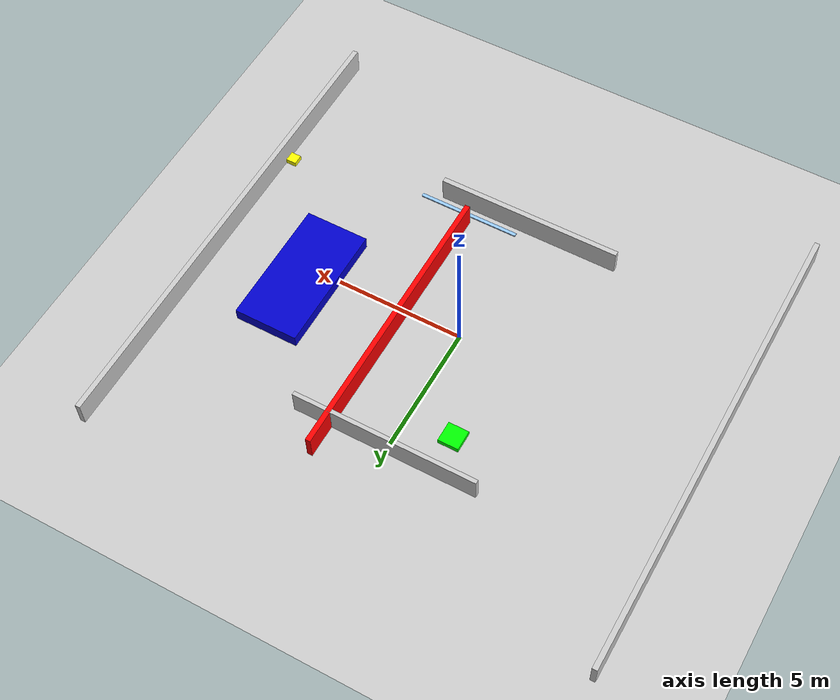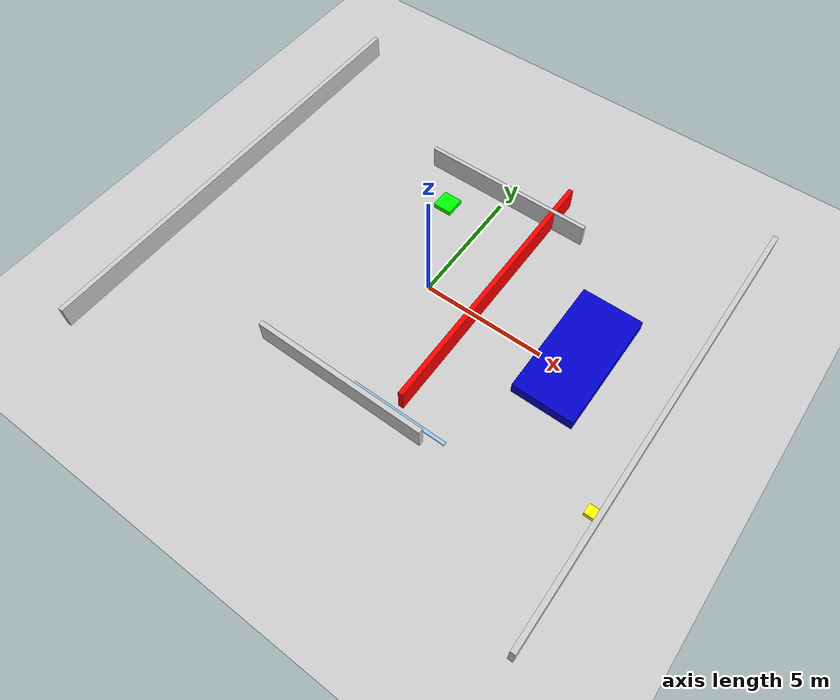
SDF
<sdf version="1.7">
 <world name="lab_world">
  <model name="ground_plane">
   <static>1</static>
   <link name="link">
    <collision name="collision">
     <geometry><plane><normal>0 0 1</normal><size>100 100</size></plane></geometry>
     <surface><friction><ode><mu>100</mu><mu2>50</mu2></ode></friction></surface>
    </collision>
    <visual name="visual">
     <cast_shadows>0</cast_shadows>
     <geometry><plane><normal>0 0 1</normal><size>100 100</size></plane></geometry>
     <material>
      <script><uri>file://media/materials/scripts/gazebo.material</uri><name>Gazebo/Grey</name></script>
     </material>
    </visual>
   </link>
  </model>
  <light name="sun" type="directional">
   <pose>0 0 10 0 -0 0</pose>
   <diffuse>0.8 0.8 0.8 1</diffuse>
   <specular>0.2 0.2 0.2 1</specular>
   <attenuation>
    <range>1000</range>
    <constant>0.9</constant>
    <linear>0.01</linear>
    <quadratic>0.001</quadratic>
   </attenuation>
   <direction>-0.5 0.1 -0.9</direction>
   <spot><inner_angle>0</inner_angle><outer_angle>0</outer_angle><falloff>0</falloff></spot>
  </light>
  <physics type="ode">
   <max_step_size>0.001</max_step_size>
   <real_time_factor>1</real_time_factor>
   <real_time_update_rate>1000</real_time_update_rate>
   <ode>
    <solver>
     <type>quick</type>
     <iters>100</iters>
     <sor>1.3</sor>
     <use_dynamic_moi_rescaling>0</use_dynamic_moi_rescaling>
    </solver>
    <constraints>
     <cfm>0</cfm>
     <erp>0.2</erp>
     <contact_max_correcting_vel>100</contact_max_correcting_vel>
     <contact_surface_layer>0.001</contact_surface_layer>
    </constraints>
   </ode>
  </physics>
  <model name="wall_north">
   <static>1</static>
   <pose>-0.008187 -5.35553 0.498171 0 -0 0</pose>
   <link name="link">
    <collision name="col"><geometry><box><size>7.21082 0.2 1</size></box></geometry></collision>
    <visual name="vis">
     <geometry><box><size>7.21082 0.2 1</size></box></geometry>
     <material><ambient>0.8 0.8 0.8 1</ambient></material>
    </visual>
   </link>
  </model>
  <model name="wall_south">
   <static>1</static>
   <pose>0.033916 5.30626 0.5 0 -0 0</pose>
   <link name="link">
    <collision name="col"><geometry><box><size>7.20162 0.164151 1</size></box></geometry></collision>
    <visual name="vis">
     <geometry><box><size>7.20162 0.164151 1</size></box></geometry>
     <material><ambient>0.8 0.8 0.8 1</ambient></material>
    </visual>
   </link>
  </model>
  <model name="wall_east">
   <static>1</static>
   <pose>-9.85829 0 0.5 0 -0 0</pose>
   <link name="link">
    <collision name="col"><geometry><box><size>0.2 18.6021 1</size></box></geometry></collision>
    <visual name="vis">
     <geometry><box><size>0.2 18.6021 1</size></box></geometry>
     <material><ambient>0.8 0.8 0.8 1</ambient></material>
    </visual>
   </link>
  </model>
  <model name="wall_west">
   <static>1</static>
   <pose>9.82913 0 0.5 0 -0 0</pose>
   <link name="link">
    <collision name="col"><geometry><box><size>0.2 18.6548 1</size></box></geometry></collision>
    <visual name="vis">
     <geometry><box><size>0.2 18.6548 1</size></box></geometry>
     <material><ambient>0.8 0.8 0.8 1</ambient></material>
    </visual>
   </link>
  </model>
  <model name="divider_partition_red">
   <static>1</static>
   <pose>2.2115 1 0.5 0 -0 0</pose>
   <link name="link">
    <collision name="col"><geometry><box><size>0.2 11.337 1</size></box></geometry></collision>
    <visual name="vis">
     <geometry><box><size>0.2 11.337 1</size></box></geometry>
     <material><ambient>1 0 0 1</ambient></material>
    </visual>
   </link>
  </model>
  <model name="counter_light_blue">
   <static>1</static>
   <pose>2.29908 -4.92974 0.1 0 -0 0</pose>
   <link name="link">
    <collision name="col"><geometry><box><size>4 0.136237 0.051893</size></box></geometry></collision>
    <visual name="vis">
     <geometry><box><size>4 0.136237 0.051893</size></box></geometry>
     <material><ambient>0.6 0.8 1 1</ambient></material>
    </visual>
   </link>
  </model>
  <model name="computer_table">
   <static>1</static>
   <pose>6.21741 0.641432 0.243576 0 -0 0</pose>
   <link name="link">
    <collision name="col"><geometry><box><size>2.5 5 0.5</size></box></geometry></collision>
    <visual name="vis">
     <geometry><box><size>2.5 5 0.5</size></box></geometry>
     <material><ambient>0 0 0.8 1</ambient></material>
    </visual>
   </link>
  </model>
  <model name="storage_parts">
   <static>1</static>
   <pose>9.51902 -4.03522 0.1 0 -0 0</pose>
   <link name="link">
    <collision name="col"><geometry><box><size>0.4 0.4 0.2</size></box></geometry></collision>
    <visual name="vis">
     <geometry><box><size>0.4 0.4 0.2</size></box></geometry>
     <material><ambient>1 1 0 1</ambient></material>
    </visual>
   </link>
  </model>
  <model name="station_a_assembly">
   <static>1</static>
   <pose>-1.80936 3.75603 0.1 0 -0 0</pose>
   <link name="link">
    <collision name="col"><geometry><box><size>0.8 0.8 0.2</size></box></geometry></collision>
    <visual name="vis">
     <geometry><box><size>0.8 0.8 0.2</size></box></geometry>
     <material><ambient>0 1 0 1</ambient></material>
    </visual>
   </link>
  </model>
  <plugin name="gazebo_ros_init" filename="libgazebo_ros_init.so"/>
  <plugin name="gazebo_ros_factory" filename="libgazebo_ros_factory.so"/>
  <gravity>0 0 -9.8</gravity>
  <magnetic_field>6e-06 2.3e-05 -4.2e-05</magnetic_field>
  <atmosphere type="adiabatic"/>
  <scene><ambient>0.4 0.4 0.4 1</ambient><background>0.7 0.7 0.7 1</background><shadows>1</shadows></scene>
  <audio><device>default</device></audio>
  <spherical_coordinates>
   <surface_model>EARTH_WGS84</surface_model>
   <latitude_deg>0</latitude_deg>
   <longitude_deg>0</longitude_deg>
   <elevation>0</elevation>
   <heading_deg>0</heading_deg>
  </spherical_coordinates>
 </world>
</sdf>
